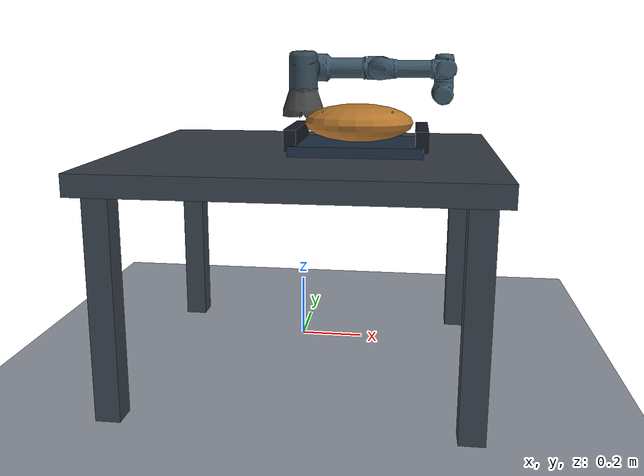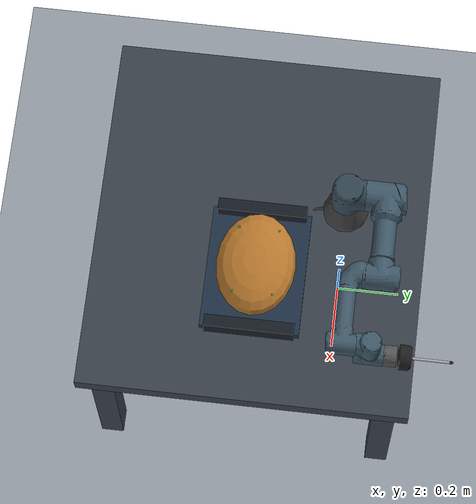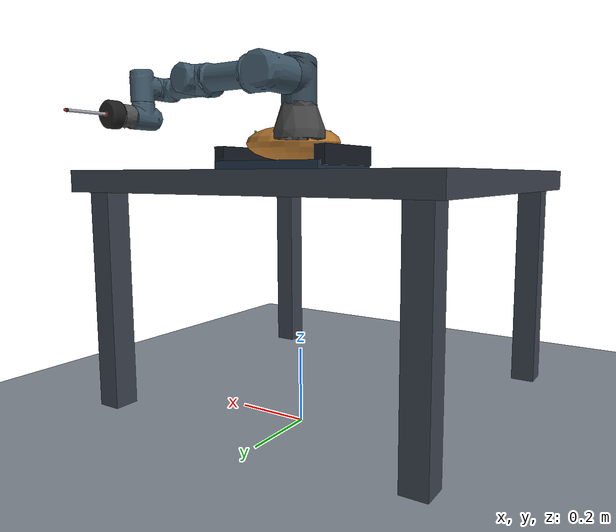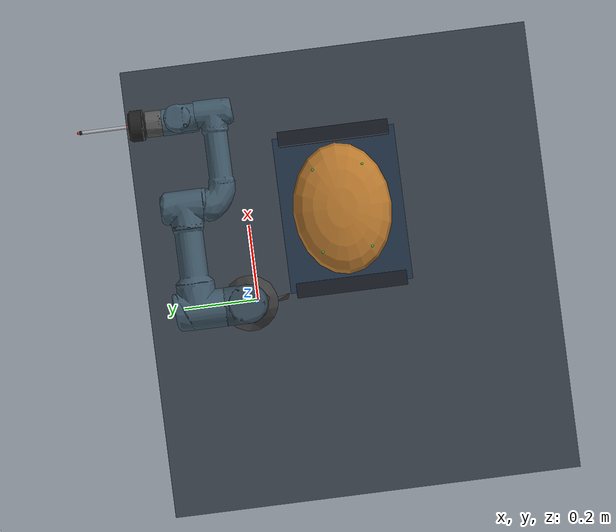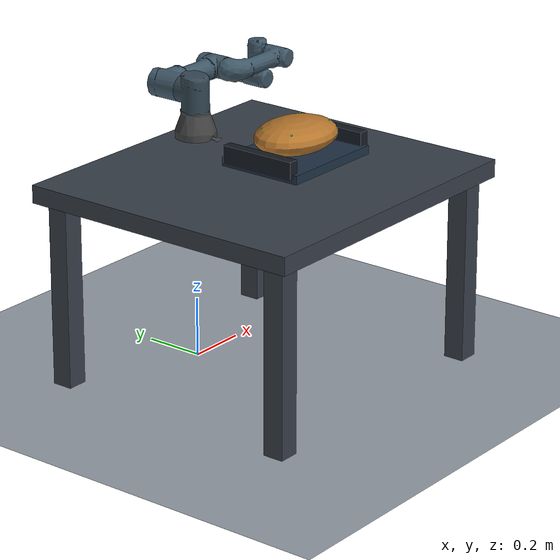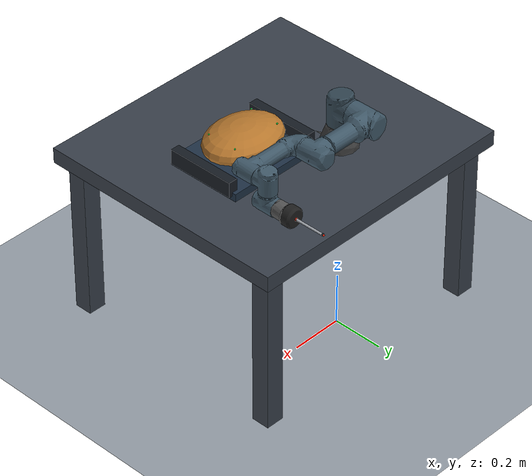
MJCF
<?xml version='1.0' encoding='utf-8'?>
<mujoco model="ur3_ft300_inspection_workcell">
  <!-- Industrial workcell scene for model-based force-controlled surface scanning. Robot dynamics are unchanged. -->
  <compiler angle="radian" autolimits="true" />
  <option timestep="0.001" integrator="implicitfast" gravity="0 0 -9.81" />
  <asset>
    <mesh name="base" content_type="model/stl" file="/home/ubuntu/ur3_ft300_ws/src/ur_description/meshes/ur3/collision/base.stl" />
    <mesh name="shoulder" content_type="model/stl" file="/home/ubuntu/ur3_ft300_ws/src/ur_description/meshes/ur3/collision/shoulder.stl" />
    <mesh name="upperarm" content_type="model/stl" file="/home/ubuntu/ur3_ft300_ws/src/ur_description/meshes/ur3/collision/upperarm.stl" />
    <mesh name="forearm" content_type="model/stl" file="/home/ubuntu/ur3_ft300_ws/src/ur_description/meshes/ur3/collision/forearm.stl" />
    <mesh name="wrist1" content_type="model/stl" file="/home/ubuntu/ur3_ft300_ws/src/ur_description/meshes/ur3/collision/wrist1.stl" />
    <mesh name="wrist2" content_type="model/stl" file="/home/ubuntu/ur3_ft300_ws/src/ur_description/meshes/ur3/collision/wrist2.stl" />
    <mesh name="wrist3" content_type="model/stl" file="/home/ubuntu/ur3_ft300_ws/src/ur_description/meshes/ur3/collision/wrist3.stl" />
    <mesh name="robotiq_ft300" content_type="model/stl" file="/home/ubuntu/ur3_ft300_ws/install/robotiq_ft_sensor_description/share/robotiq_ft_sensor_description/meshes/collision/robotiq_ft300.STL" />
    <mesh name="robotiq_ft300-G-062-COUPLING_G-50-4M6-1D6_20181119" content_type="model/stl" file="/home/ubuntu/ur3_ft300_ws/install/robotiq_ft_sensor_description/share/robotiq_ft_sensor_description/meshes/collision/mountings/robotiq_ft300-G-062-COUPLING_G-50-4M6-1D6_20181119.STL" />
    <material name="ur_base_gray" rgba="0.2688 0.2688 0.2688 1" specular="0.25" shininess="0.35" />
    <material name="ur_shoulder_blue" rgba="0.200704 0.278016 0.32768 1" specular="0.25" shininess="0.35" />
    <material name="ur_blue" rgba="0.25088 0.34752 0.4096 1" specular="0.3" shininess="0.4" />
    <material name="ur_metal_gray" rgba="0.335872 0.335872 0.335872 1" specular="0.35" shininess="0.45" />
    <material name="inspection_probe_metal" rgba="0.70 0.72 0.75 1" specular="0.55" shininess="0.65" />
    <material name="inspection_tip_dark" rgba="0.10 0.12 0.14 1" specular="0.35" shininess="0.45" />
    <texture name="workcell_skybox" type="skybox" builtin="gradient" rgb1="0.92 0.95 1.00" rgb2="0.45 0.56 0.72" width="512" height="3072" />
    <material name="floor_mat" rgba="0.58 0.61 0.65 1" specular="0.10" shininess="0.15" />
    <material name="table_mat" rgba="0.22 0.25 0.29 1" specular="0.35" shininess="0.45" />
    <material name="fixture_mat" rgba="0.12 0.19 0.27 1" specular="0.45" shininess="0.55" />
    <material name="workpiece_mat" rgba="0.72 0.47 0.18 1" specular="0.45" shininess="0.50" />
    <material name="clamp_mat" rgba="0.09 0.11 0.14 1" specular="0.25" shininess="0.30" />
  </asset>
  <worldbody>
    <body name="base_link" pos="0 0 0.76">
      <body name="base_link_inertia" quat="0 0 0 1">
        <inertial pos="0 0 0" quat="0.5 0.5 -0.5 0.5" mass="2" diaginertia="0.005625 0.00305317 0.00305317" />
        <geom quat="0 0 0 1" type="mesh" mesh="base" friction="0.8 0.01 0.001" material="ur_base_gray" />
        <body name="shoulder_link" pos="0 0 0.1519">
          <inertial pos="0 0 -0.02" mass="2" diaginertia="0.00809317 0.00809317 0.005625" />
          <joint name="shoulder_pan_joint" range="-6.28319 6.28319" actuatorfrcrange="-56 56" damping="0.15" armature="0.01" />
          <geom quat="0 0 0 1" type="mesh" mesh="shoulder" friction="0.8 0.01 0.001" material="ur_shoulder_blue" />
          <body name="upper_arm_link" quat="0.707107 0.707107 0 0">
            <inertial pos="-0.11365 0 0.1157" mass="3.42" diaginertia="0.0217285 0.0217285 0.00961875" />
            <joint name="shoulder_lift_joint" range="-6.28319 6.28319" actuatorfrcrange="-56 56" damping="0.15" armature="0.01" />
            <geom pos="0 0 0.1198" quat="0.5 0.5 -0.5 -0.5" type="mesh" mesh="upperarm" friction="0.8 0.01 0.001" material="ur_blue" />
            <body name="forearm_link" pos="-0.24365 0 0">
              <inertial pos="-0.16325 0 0.0238" mass="1.26" diaginertia="0.00654681 0.00654681 0.00354375" />
              <joint name="elbow_joint" range="-3.14159 3.14159" actuatorfrcrange="-28 28" damping="0.15" armature="0.01" />
              <geom pos="0 0 0.0275" quat="0.5 0.5 -0.5 -0.5" type="mesh" mesh="forearm" friction="0.8 0.01 0.001" material="ur_blue" />
              <body name="wrist_1_link" pos="-0.21325 0 0.11235">
                <inertial pos="0 -0.01 0" quat="0.5 0.5 -0.5 0.5" mass="0.8" diaginertia="0.00225 0.00161064 0.00161064" />
                <joint name="wrist_1_joint" range="-6.28319 6.28319" actuatorfrcrange="-12 12" damping="0.08" armature="0.001" />
                <geom pos="0 0 -0.085" quat="0.707107 0.707107 0 0" type="mesh" mesh="wrist1" friction="0.8 0.01 0.001" material="ur_blue" />
                <body name="wrist_2_link" pos="0 -0.08535 -1.75056e-11" quat="0.707107 0.707107 0 0">
                  <inertial pos="0 0.01 0" quat="0.5 0.5 -0.5 0.5" mass="0.8" diaginertia="0.00225 0.00157217 0.00157217" />
                  <joint name="wrist_2_joint" range="-6.28319 6.28319" actuatorfrcrange="-12 12" damping="0.08" armature="0.001" />
                  <geom pos="0 0 -0.083" quat="1 0 0 0" type="mesh" mesh="wrist2" friction="0.8 0.01 0.001" material="ur_blue" />
                  <body name="wrist_3_link" pos="0 0.0819 -1.6798e-11" quat="0.707107 -0.707107 0 0">
                    <inertial pos="0 0 -0.02" quat="0.5 0.5 -0.5 0.5" mass="0.35" diaginertia="0.0001792 0.000136267 0.000136267" />
                    <joint name="wrist_3_joint" actuatorfrcrange="-12 12" damping="0.08" armature="0.001" />
                    <geom pos="0 -0.002 -0.082" quat="0.707107 0.707107 0 0" type="mesh" mesh="wrist3" friction="0.8 0.01 0.001" material="ur_metal_gray" />
                    <body name="ft_frame" quat="0 1 0 0" />
                    <body name="flange" quat="0.5 -0.5 -0.5 -0.5">
                      <body name="tool0" quat="0.5 0.5 0.5 0.5">
                        <body name="ft300_mounting_plate">
                          <geom type="mesh" rgba="0.12 0.12 0.12 1" mesh="robotiq_ft300-G-062-COUPLING_G-50-4M6-1D6_20181119" friction="0.8 0.01 0.001" />
                          <body name="ft300_sensor" pos="0 0 0.0415" quat="0 0 1 0">
                            <inertial pos="0 0 -0.017" quat="0.709662 -0.000475378 -0.0158879 0.704363" mass="0.3" diaginertia="0.000265022 0.000262023 0.000218955" />
                            <geom type="mesh" rgba="0.12 0.12 0.12 1" mesh="robotiq_ft300" friction="0.8 0.01 0.001" />
                            <body name="robotiq_ft_frame_id" quat="0 0.707107 0.707107 0">
                              <site name="ft300_site" pos="0 0 0" size="0.006" rgba="1 0.2 0.1 0.8" />
                              <body name="inspection_probe">
                                <inertial pos="0 0 0.067083333333333342" mass="0.12" diaginertia="0.0001659125 0.0001659125 9.9999999999999995e-07" />
                                <geom name="inspection_probe_shaft" type="cylinder" size="0.0040000000000000001 0.057499999999999996" pos="0 0 0.057499999999999996" material="inspection_probe_metal" contype="0" conaffinity="0" />
                                <geom name="inspection_probe_tip_collision" type="sphere" size="0.0050000000000000001" pos="0 0 0.11499999999999999" material="inspection_tip_dark" friction="0.45 0.01 0.001" solref="-2500 -35" />
                                <body name="inspection_tip" pos="0 0 0.12">
                                  <site name="inspection_tip_site" pos="0 0 0" size="0.0035" rgba="1 0.15 0.05 0.9" />
                                </body>
                              </body>
                            </body>
                          </body>
                        </body>
                      </body>
                    </body>
                  </body>
                </body>
              </body>
            </body>
          </body>
        </body>
      </body>
      <body name="base" quat="0 0 0 1" />
    </body>
    <geom name="factory_floor" type="plane" size="3 3 0.1" pos="0 0 0" material="floor_mat" friction="0.9 0.01 0.001" />
    <light name="key_light" pos="0.30 -0.30 2.40" dir="-0.10 0.05 -1" directional="true" diffuse="0.90 0.90 0.90" specular="0.25 0.25 0.25" />
    <light name="fill_light" pos="-1.20 0.40 1.60" dir="0.60 -0.20 -0.70" directional="true" diffuse="0.45 0.48 0.55" specular="0.10 0.10 0.12" />
    <body name="inspection_workbench">
      <geom name="table_top" type="box" pos="0.050000 -0.250000 0.650000" size="0.550000 0.500000 0.030000" material="table_mat" friction="0.9 0.01 0.001" />
      <geom name="table_leg_1" type="box" pos="0.530000 0.180000 0.310000" size="0.035000 0.035000 0.310000" material="table_mat" friction="0.9 0.01 0.001" />
      <geom name="table_leg_2" type="box" pos="0.530000 -0.680000 0.310000" size="0.035000 0.035000 0.310000" material="table_mat" friction="0.9 0.01 0.001" />
      <geom name="table_leg_3" type="box" pos="-0.430000 0.180000 0.310000" size="0.035000 0.035000 0.310000" material="table_mat" friction="0.9 0.01 0.001" />
      <geom name="table_leg_4" type="box" pos="-0.430000 -0.680000 0.310000" size="0.035000 0.035000 0.310000" material="table_mat" friction="0.9 0.01 0.001" />
      <geom name="fixture_base" type="box" pos="0.200000 -0.250000 0.695000" size="0.190000 0.150000 0.015000" material="fixture_mat" friction="0.8 0.01 0.001" />
      <geom name="fixture_clamp_left" type="box" pos="0.015000 -0.250000 0.725000" size="0.018 0.135 0.030" material="clamp_mat" friction="0.8 0.01 0.001" />
      <geom name="fixture_clamp_right" type="box" pos="0.385000 -0.250000 0.725000" size="0.018 0.135 0.030" material="clamp_mat" friction="0.8 0.01 0.001" />
      <geom name="inspection_workpiece" type="ellipsoid" pos="0.200000 -0.250000 0.765000" size="0.160000 0.120000 0.055000" material="workpiece_mat" friction="0.30 0.01 0.001" solref="-2500 -35" />
      <site name="scan_corner_1" type="sphere" pos="0.100000 -0.310000 0.800971" size="0.003" rgba="0.10 0.85 0.25 0.95" />
      <site name="scan_corner_2" type="sphere" pos="0.100000 -0.190000 0.800971" size="0.003" rgba="0.10 0.85 0.25 0.95" />
      <site name="scan_corner_3" type="sphere" pos="0.300000 -0.310000 0.800971" size="0.003" rgba="0.10 0.85 0.25 0.95" />
      <site name="scan_corner_4" type="sphere" pos="0.300000 -0.190000 0.800971" size="0.003" rgba="0.10 0.85 0.25 0.95" />
    </body>
  </worldbody>
  <visual>
    <headlight ambient="0.45 0.45 0.45" diffuse="0.75 0.75 0.75" />
    <rgba haze="0.75 0.82 0.90 1" />
  </visual>
  <contact>
    <exclude body1="base_link_inertia" body2="shoulder_link" />
  </contact>
  <actuator>
    <motor name="shoulder_pan_motor" joint="shoulder_pan_joint" gear="1" ctrllimited="true" ctrlrange="-56 56" />
    <motor name="shoulder_lift_motor" joint="shoulder_lift_joint" gear="1" ctrllimited="true" ctrlrange="-56 56" />
    <motor name="elbow_motor" joint="elbow_joint" gear="1" ctrllimited="true" ctrlrange="-28 28" />
    <motor name="wrist1_motor" joint="wrist_1_joint" gear="1" ctrllimited="true" ctrlrange="-12 12" />
    <motor name="wrist2_motor" joint="wrist_2_joint" gear="1" ctrllimited="true" ctrlrange="-12 12" />
    <motor name="wrist3_motor" joint="wrist_3_joint" gear="1" ctrllimited="true" ctrlrange="-12 12" />
  </actuator>
  <sensor>
    <force name="ft300_force" site="ft300_site" />
    <torque name="ft300_torque" site="ft300_site" />
  </sensor>
  <keyframe>
    <key name="home" qpos="-1.254 -1.5707 1.5707 -1.5707 -1.5707 0" ctrl="0 0 0 0 0 0" />
  </keyframe>
</mujoco>
